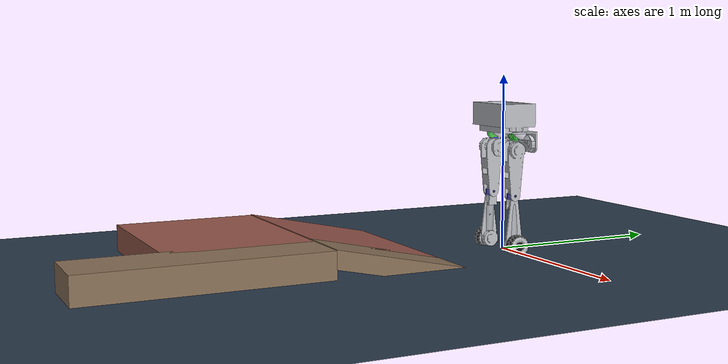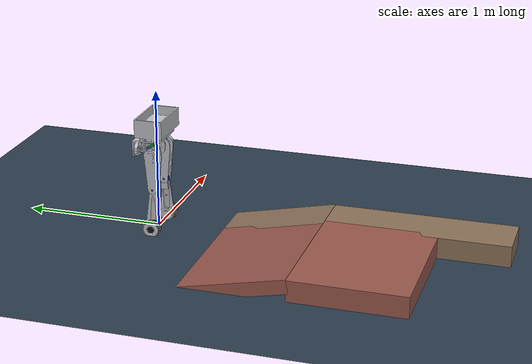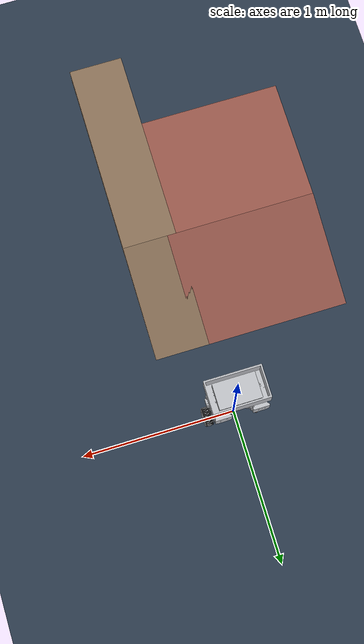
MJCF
<mujoco model="wheeled_biped_real">

  <!-- ==================== COMPILER ==================== -->
  <compiler angle="radian" meshdir="../robot-urdf/meshes/" autolimits="true"/>

  <!-- ==================== OPTIONS ==================== -->
  <option timestep="0.002" gravity="0 0 -9.81" integrator="implicitfast"
          iterations="4" ls_iterations="8" cone="pyramidal">
    <flag contact="enable"/>
  </option>

  <!-- ==================== SIZE ==================== -->
  <size nconmax="200" njmax="500"/>

  <!-- ==================== DEFAULTS ==================== -->
  <default>
    <default class="robot">
      <joint damping="1.0" armature="0.01" frictionloss="0.1"/>
      <!-- Nhôm 6061-T6: ma sát trung bình, tiếp xúc cứng -->
      <geom condim="3" contype="1" conaffinity="1"
            friction="0.5 0.02 0.01"
            solref="0.002 1" solimp="0.95 0.99 0.001 0.5 2"
            rgba="0.7 0.72 0.74 1"/>
      <motor ctrllimited="true"/>
    </default>

    <!-- Mesh visual (không va chạm) -->
    <default class="visual">
      <geom contype="0" conaffinity="0" group="1"
            rgba="0.75 0.76 0.78 1"/>
    </default>

    <!-- Collision nhôm cho khung chân -->
    <default class="leg_collision">
      <geom type="capsule" size="0.022" group="0"
            rgba="0.7 0.72 0.74 0.6" condim="3" contype="1" conaffinity="1"
            friction="0.5 0.02 0.01"
            solref="0.002 1" solimp="0.95 0.99 0.001 0.5 2"/>
    </default>

    <!-- Khớp motor (visual) -->
    <default class="motor_visual">
      <geom type="cylinder" size="0.030 0.016" contype="0" conaffinity="0"
            group="1" rgba="0.15 0.15 0.8 0.8"/>
    </default>

    <!-- Bánh xe: lốp cao su - ma sát cao, tiếp xúc mềm hơn nhôm -->
    <default class="wheel">
      <geom type="cylinder" condim="6"
            friction="1.2 0.005 0.0003"
            solref="0.005 0.7" solimp="0.9 0.95 0.001 0.5 2"
            rgba="0.08 0.08 0.08 1" priority="1"/>
    </default>
  </default>

  <!-- ==================== ASSETS ==================== -->
  <asset>
    <!-- STL meshes từ URDF SolidWorks -->
    <mesh name="than" file="than.STL"/>
    <mesh name="eophai" file="eophai.STL"/>
    <mesh name="xoaychanphai" file="xoaychanphai.STL"/>
    <mesh name="duiphai" file="duiphai.STL"/>
    <mesh name="ongchanphai" file="ongchanphai.STL"/>
    <mesh name="banhxephai" file="banhxephai.STL"/>
    <mesh name="eotrai" file="eotrai.STL"/>
    <mesh name="xoaychantrai" file="xoaychantrai.STL"/>
    <mesh name="duitrai" file="duitrai.STL"/>
    <mesh name="ongchantrai" file="ongchantrai.STL"/>
    <mesh name="banhxetrai" file="banhxetrai.STL"/>

    <!-- Texture mặt đất -->
    <texture name="grid_tex" type="2d" builtin="checker" width="512" height="512"
             rgb1="0.12 0.18 0.25" rgb2="0.22 0.28 0.35"/>
    <material name="grid_mat" texture="grid_tex" texrepeat="10 10"
              reflectance="0.1"/>

    <!-- Material robot (nhôm 6061-T6: bạc sáng, bóng kim loại) -->
    <material name="body_mat"  rgba="0.75 0.76 0.78 1" specular="0.7" shininess="0.6"/>
    <material name="leg_mat"   rgba="0.72 0.73 0.75 1" specular="0.6" shininess="0.5"/>
    <!-- Lốp cao su: đen mờ -->
    <material name="wheel_mat" rgba="0.08 0.08 0.08 1" specular="0.05" shininess="0.05"/>
    <material name="motor_mat" rgba="0.15 0.15 0.70 0.9"/>
  </asset>

  <!-- ==================== WORLDBODY ==================== -->
  <worldbody>
    <!-- Ánh sáng -->
    <light name="top_light"    pos="0 0 3" dir="0 0 -1" diffuse="0.8 0.8 0.8"
           specular="0.3 0.3 0.3" castshadow="true"/>
    <light name="front_light"  pos="2 -2 2" dir="-1 1 -0.5" diffuse="0.4 0.4 0.4"/>

    <!-- Mặt đất (bê tông) -->
    <geom name="floor" type="plane" size="50 50 0.1" material="grid_mat"
          condim="6" contype="1" conaffinity="1"
          friction="0.8 0.005 0.0001"
          solref="0.002 1" solimp="0.95 0.99 0.001 0.5 2"/>

    <!-- ==================== ROBOT BODY ==================== -->
    <body name="torso" pos="0 0 0.71">
      <freejoint name="root"/>

      <!-- Visual: mesh thân từ URDF -->
      <geom name="torso_visual" type="mesh" mesh="than" class="visual"/>
      <!-- Collision: box thân (nhôm) -->
      <geom name="torso_collision" type="box" size="0.13 0.08 0.055"
            pos="0 0 0.02" material="body_mat" contype="1" conaffinity="1"
            friction="0.5 0.02 0.01"
            solref="0.002 1" solimp="0.95 0.99 0.001 0.5 2"/>
      <inertial mass="2.5" pos="0 0 0.040584"
                diaginertia="0.015241 0.017751 0.005598"/>

      <!-- Điểm gắn cảm biến IMU -->
      <site name="imu_site" pos="0 0 0" size="0.005" rgba="1 0 0 0.5"/>
      <!-- Điểm theo dõi trọng tâm -->
      <site name="torso_com" pos="0 0 0" size="0.01" rgba="0 1 0 0.3"/>

      <!-- =====================================================
           CHÂN TRÁI (eotrai)
           ===================================================== -->
      <body name="l_hip_roll_link" pos="0.115 0 -0.0295"
            quat="0.499998 0.5 0.500002 0.5">
        <inertial pos="0.088462 -0.047569 2.1318e-06"
                  quat="0.707779 0.706433 -0.000794732 -0.00081211"
                  mass="0.5" diaginertia="0.00036543 0.00032404 0.00031624"/>
        <joint name="l_hip_roll" type="hinge" axis="0 1 0"
               range="-0.7 0.7" damping="1.5" armature="0.02"/>
        <geom name="l_hip_roll_visual" type="mesh" mesh="eotrai" class="visual"/>
        <geom name="l_hip_roll_collision" class="leg_collision"
              fromto="0 0 0  0.08 -0.05 0" size="0.028" material="leg_mat"/>
        <geom name="l_hip_roll_motor" class="motor_visual"
              pos="0 -0.02 0" rgba="0.15 0.75 0.15 0.8"/>

        <body name="l_hip_yaw_link" pos="0 -0.07 0"
              quat="-0.500553 0.499448 0.500552 0.499446">
          <inertial pos="-0.05199 0.027638 -0.026248"
                    quat="0.707249 0.705946 0.0270686 -0.0265876"
                    mass="0.8" diaginertia="0.000353804 0.000227846 0.000209"/>
          <joint name="l_hip_yaw" type="hinge" axis="0 0.999998 -0.00221419"
                 range="-0.4 0.4" damping="1.2" armature="0.02"/>
          <geom name="l_hip_yaw_visual" type="mesh" mesh="xoaychantrai" class="visual"/>
          <geom name="l_hip_yaw_collision" class="leg_collision"
                fromto="-0.01 0 0.005  -0.05 0.02 -0.03" size="0.025" material="leg_mat"/>
          <geom name="l_hip_yaw_motor" class="motor_visual" pos="0 0 -0.01"/>

          <body name="l_thigh" pos="0 -0.010824 -0.030024"
                quat="0.000780242 0.707105 0.707108 -0.000785434">
            <inertial pos="-8.5149e-07 0.006764 0.096793"
                      quat="0.707108 8.29078e-06 -1.1111e-05 0.707106"
                      mass="0.8" diaginertia="0.0044915 0.0041434 0.00041762"/>
            <joint name="l_hip_pitch" type="hinge" axis="0 -1 0"
                   range="-0.5 1.8" damping="1.5" armature="0.02"/>
            <geom name="l_thigh_visual" type="mesh" mesh="duitrai" class="visual"/>
            <geom name="l_thigh_collision" class="leg_collision"
                  fromto="0 0 0  0 0 0.26" material="leg_mat"/>
            <site name="l_thigh_center" pos="0 0 0.13" size="0.005"/>

            <body name="l_knee_link" pos="0 0 0.26"
                  quat="-3.67321e-06 0 0 1">
              <inertial pos="1.5549e-06 -0.010551 0.186"
                        quat="0.707105 -2.42277e-05 1.79504e-05 0.707108"
                        mass="0.6" diaginertia="0.0020924 0.0018923 0.00021843"/>
              <joint name="l_knee" type="hinge" axis="0 -1 0"
                     range="-0.5 2.7" damping="1.5" armature="0.02"/>
              <geom name="l_knee_motor" class="motor_visual" pos="0 0 0.005"/>
              <geom name="l_shin_visual" type="mesh" mesh="ongchantrai" class="visual"/>
              <geom name="l_shin_collision" class="leg_collision"
                    fromto="0 0 0  0 -0.02 0.28" material="leg_mat"/>
              <site name="l_shin_center" pos="0 -0.01 0.14" size="0.005"/>

              <body name="l_wheel_link" pos="0 -0.0205 0.28"
                    quat="0.40315 -0.580922 -0.580922 0.40315">
                <inertial pos="-0.038074 0 1.7979e-12"
                          mass="0.1" diaginertia="0.00018832 0.00012247 0.00012247"/>
                <joint name="l_wheel" type="hinge" axis="-1 0 0"
                       limited="false" damping="0.02" armature="0.008"/>
                <geom name="l_wheel_visual" type="mesh" mesh="banhxetrai" class="visual"/>
                <geom name="l_wheel_collision" class="wheel"
                      size="0.06 0.025" euler="0 1.5708 0"
                      pos="-0.038 0 0" material="wheel_mat"/>
                <site name="l_wheel_contact" pos="0 0 -0.06"
                      size="0.01" rgba="1 0.5 0 0.3"/>
              </body>
            </body>
          </body>
        </body>
      </body>

      <!-- =====================================================
           CHÂN PHẢI (eophai)
           ===================================================== -->
      <body name="r_hip_roll_link" pos="-0.115 0 -0.0295"
            quat="0.499998 0.5 0.500002 0.5">
        <inertial pos="0.088462 -0.047569 2.1318e-06"
                  quat="0.707779 0.706433 -0.000794732 -0.00081211"
                  mass="0.5" diaginertia="0.00036543 0.00032404 0.00031624"/>
        <joint name="r_hip_roll" type="hinge" axis="0 1 0"
               range="-0.7 0.7" damping="1.5" armature="0.02"/>
        <geom name="r_hip_roll_visual" type="mesh" mesh="eophai" class="visual"/>
        <geom name="r_hip_roll_collision" class="leg_collision"
              fromto="0 0 0  0.08 -0.05 0" size="0.028" material="leg_mat"/>
        <geom name="r_hip_roll_motor" class="motor_visual"
              pos="0 -0.02 0" rgba="0.15 0.75 0.15 0.8"/>

        <body name="r_hip_yaw_link" pos="0 -0.07 0"
              quat="0.499998 -0.5 -0.500002 0.5">
          <inertial pos="-0.026182 -0.05199 -0.027696"
                    quat="0.679775 0.000141754 0.0007132 0.73342"
                    mass="0.8" diaginertia="0.000353804 0.000227846 0.000209"/>
          <joint name="r_hip_yaw" type="hinge" axis="0 0 -1"
                 range="-0.4 0.4" damping="1.2" armature="0.02"/>
          <geom name="r_hip_yaw_visual" type="mesh" mesh="xoaychanphai" class="visual"/>
          <geom name="r_hip_yaw_collision" class="leg_collision"
                fromto="-0.005 0 0.005  -0.025 -0.045 -0.03" size="0.025" material="leg_mat"/>
          <geom name="r_hip_yaw_motor" class="motor_visual" pos="0 0 -0.01"/>

          <body name="r_thigh" pos="-0.03 0 0.0107637"
                quat="0.707105 0 -0.707108 0">
            <inertial pos="-8.5149e-07 0.006764 0.096793"
                      quat="0.707108 8.29078e-06 -1.1111e-05 0.707106"
                      mass="0.8" diaginertia="0.0044915 0.0041434 0.00041762"/>
            <joint name="r_hip_pitch" type="hinge" axis="0 1 0"
                   range="-0.5 1.8" damping="1.5" armature="0.02"/>
            <geom name="r_thigh_visual" type="mesh" mesh="duiphai" class="visual"/>
            <geom name="r_thigh_collision" class="leg_collision"
                  fromto="0 0 0  0 0 0.26" material="leg_mat"/>
            <site name="r_thigh_center" pos="0 0 0.13" size="0.005"/>

            <body name="r_knee_link" pos="0 0 0.26"
                  quat="-3.67321e-06 0 0 1">
              <inertial pos="1.5549e-06 -0.010551 0.186"
                        quat="0.707105 -2.42277e-05 1.79504e-05 0.707108"
                        mass="0.6" diaginertia="0.0020924 0.0018923 0.00021843"/>
              <joint name="r_knee" type="hinge" axis="0 1 0"
                     range="-0.5 2.7" damping="1.5" armature="0.02"/>
              <geom name="r_knee_motor" class="motor_visual" pos="0 0 0.005"/>
              <geom name="r_shin_visual" type="mesh" mesh="ongchanphai" class="visual"/>
              <geom name="r_shin_collision" class="leg_collision"
                    fromto="0 0 0  0 -0.02 0.28" material="leg_mat"/>
              <site name="r_shin_center" pos="0 -0.01 0.14" size="0.005"/>

              <body name="r_wheel_link" pos="0 -0.0205 0.28"
                    quat="0.40315 -0.580922 -0.580922 0.40315">
                <inertial pos="-0.038074 0 1.8114e-12"
                          mass="0.1" diaginertia="0.00018832 0.00012247 0.00012247"/>
                <joint name="r_wheel" type="hinge" axis="1 0 0"
                       limited="false" damping="0.02" armature="0.008"/>
                <geom name="r_wheel_visual" type="mesh" mesh="banhxephai" class="visual"/>
                <geom name="r_wheel_collision" class="wheel"
                      size="0.06 0.025" euler="0 1.5708 0"
                      pos="-0.038 0 0" material="wheel_mat"/>
                <site name="r_wheel_contact" pos="0 0 -0.06"
                      size="0.01" rgba="1 0.5 0 0.3"/>
              </body>
            </body>
          </body>
        </body>
      </body>

    </body>  <!-- end torso -->
    <geom name="curb_ramp" type="box" size="0.18 0.38073007585580976 0.05" pos="0.20 -0.8425 0.0261" euler="-0.209440 0 0" condim="6" contype="1" conaffinity="1" friction="0.8 0.005 0.0001" solref="0.002 1" solimp="0.95 0.99 0.001 0.5 2" rgba="0.55 0.45 0.35 1"/>
    <geom name="curb_top" type="box" size="0.18 0.65 0.075" pos="0.20 -1.8557 0.0750" condim="6" contype="1" conaffinity="1" friction="0.8 0.005 0.0001" solref="0.002 1" solimp="0.95 0.99 0.001 0.5 2" rgba="0.55 0.45 0.35 1"/>
    <geom name="drop_ramp" type="box" size="0.5 0.38073007585580976 0.05" pos="-0.42 -0.8425 0.0261" euler="-0.209440 0 0" condim="6" contype="1" conaffinity="1" friction="0.8 0.005 0.0001" solref="0.002 1" solimp="0.95 0.99 0.001 0.5 2" rgba="0.60 0.35 0.30 1"/>
    <geom name="drop_plat" type="box" size="0.5 0.4 0.075" pos="-0.42 -1.6057 0.0750" condim="6" contype="1" conaffinity="1" friction="0.8 0.005 0.0001" solref="0.002 1" solimp="0.95 0.99 0.001 0.5 2" rgba="0.60 0.35 0.30 1"/>
  </worldbody>

  <!-- ==================== CONTACT ==================== -->
  <contact>
    <exclude body1="torso"           body2="l_hip_roll_link"/>
    <exclude body1="torso"           body2="r_hip_roll_link"/>
    <exclude body1="l_hip_roll_link" body2="l_hip_yaw_link"/>
    <exclude body1="r_hip_roll_link" body2="r_hip_yaw_link"/>
    <exclude body1="l_hip_yaw_link"  body2="l_thigh"/>
    <exclude body1="r_hip_yaw_link"  body2="r_thigh"/>
    <exclude body1="l_thigh"         body2="l_knee_link"/>
    <exclude body1="r_thigh"         body2="r_knee_link"/>
    <exclude body1="l_knee_link"     body2="l_wheel_link"/>
    <exclude body1="r_knee_link"     body2="r_wheel_link"/>
    <exclude body1="torso"           body2="l_hip_yaw_link"/>
    <exclude body1="torso"           body2="r_hip_yaw_link"/>
    <exclude body1="l_hip_roll_link" body2="l_thigh"/>
    <exclude body1="r_hip_roll_link" body2="r_thigh"/>
    <exclude body1="l_hip_yaw_link"  body2="l_knee_link"/>
    <exclude body1="r_hip_yaw_link"  body2="r_knee_link"/>
    <exclude body1="l_thigh"         body2="l_wheel_link"/>
    <exclude body1="r_thigh"         body2="r_wheel_link"/>
    <exclude body1="torso"           body2="l_thigh"/>
    <exclude body1="torso"           body2="r_thigh"/>
    <exclude body1="torso"           body2="l_knee_link"/>
    <exclude body1="torso"           body2="r_knee_link"/>
    <exclude body1="torso"           body2="l_wheel_link"/>
    <exclude body1="torso"           body2="r_wheel_link"/>
    <exclude body1="l_hip_roll_link" body2="r_hip_roll_link"/>
  </contact>

  <!-- ==================== ACTUATORS (10 động cơ) ==================== -->
  <actuator>
    <!-- Chân trái -->
    <motor name="l_hip_roll_motor"  joint="l_hip_roll"  gear="1"
           ctrlrange="-30 30"  forcelimited="true" forcerange="-60 60"/>
    <motor name="l_hip_yaw_motor"   joint="l_hip_yaw"   gear="1"
           ctrlrange="-30 30"  forcelimited="true" forcerange="-60 60"/>
    <motor name="l_hip_pitch_motor" joint="l_hip_pitch" gear="1"
           ctrlrange="-150 150"  forcelimited="true" forcerange="-150 150"/>
    <motor name="l_knee_motor"      joint="l_knee"      gear="1"
           ctrlrange="-150 150"  forcelimited="true" forcerange="-150 150"/>
    <motor name="l_wheel_motor"     joint="l_wheel"     gear="1"
           ctrlrange="-30 30"  forcelimited="true" forcerange="-60 60"/>

    <!-- Chân phải -->
    <motor name="r_hip_roll_motor"  joint="r_hip_roll"  gear="1"
           ctrlrange="-30 30"  forcelimited="true" forcerange="-60 60"/>
    <motor name="r_hip_yaw_motor"   joint="r_hip_yaw"   gear="1"
           ctrlrange="-30 30"  forcelimited="true" forcerange="-60 60"/>
    <motor name="r_hip_pitch_motor" joint="r_hip_pitch" gear="1"
           ctrlrange="-150 150"  forcelimited="true" forcerange="-150 150"/>
    <motor name="r_knee_motor"      joint="r_knee"      gear="1"
           ctrlrange="-150 150"  forcelimited="true" forcerange="-150 150"/>
    <motor name="r_wheel_motor"     joint="r_wheel"     gear="1"
           ctrlrange="-30 30"  forcelimited="true" forcerange="-60 60"/>
  </actuator>

  <!-- ==================== SENSORS ==================== -->
  <sensor>
    <accelerometer name="imu_accel"  site="imu_site"/>
    <gyro          name="imu_gyro"   site="imu_site"/>
    <framequat     name="imu_quat"   objtype="site" objname="imu_site"/>

    <jointpos name="l_hip_roll_pos"  joint="l_hip_roll"/>
    <jointpos name="l_hip_yaw_pos"   joint="l_hip_yaw"/>
    <jointpos name="l_hip_pitch_pos" joint="l_hip_pitch"/>
    <jointpos name="l_knee_pos"      joint="l_knee"/>
    <jointpos name="l_wheel_pos"     joint="l_wheel"/>
    <jointpos name="r_hip_roll_pos"  joint="r_hip_roll"/>
    <jointpos name="r_hip_yaw_pos"   joint="r_hip_yaw"/>
    <jointpos name="r_hip_pitch_pos" joint="r_hip_pitch"/>
    <jointpos name="r_knee_pos"      joint="r_knee"/>
    <jointpos name="r_wheel_pos"     joint="r_wheel"/>

    <jointvel name="l_hip_roll_vel"  joint="l_hip_roll"/>
    <jointvel name="l_hip_yaw_vel"   joint="l_hip_yaw"/>
    <jointvel name="l_hip_pitch_vel" joint="l_hip_pitch"/>
    <jointvel name="l_knee_vel"      joint="l_knee"/>
    <jointvel name="l_wheel_vel"     joint="l_wheel"/>
    <jointvel name="r_hip_roll_vel"  joint="r_hip_roll"/>
    <jointvel name="r_hip_yaw_vel"   joint="r_hip_yaw"/>
    <jointvel name="r_hip_pitch_vel" joint="r_hip_pitch"/>
    <jointvel name="r_knee_vel"      joint="r_knee"/>
    <jointvel name="r_wheel_vel"     joint="r_wheel"/>

    <torque name="l_wheel_torque" site="l_wheel_contact"/>
    <torque name="r_wheel_torque" site="r_wheel_contact"/>
  </sensor>

  <!-- ==================== KEYFRAME ==================== -->
  <!-- qpos: [root_pos(3) root_quat(4) |
       l_hip_roll l_hip_yaw l_hip_pitch l_knee l_wheel |
       r_hip_roll r_hip_yaw r_hip_pitch r_knee r_wheel] -->
  <keyframe>
    <key name="standing"
         qpos="0.000000 0.000000 0.531943 1.000000 0.000000 0.000000 0.000000
               0.000000 0.000000 0.926052 1.748364 0.000000 0.000000 0.000000 0.926052 1.748364 0.000000"
         ctrl="0 0 0 0 0
               0 0 0 0 0"/>
  </keyframe>

</mujoco>
